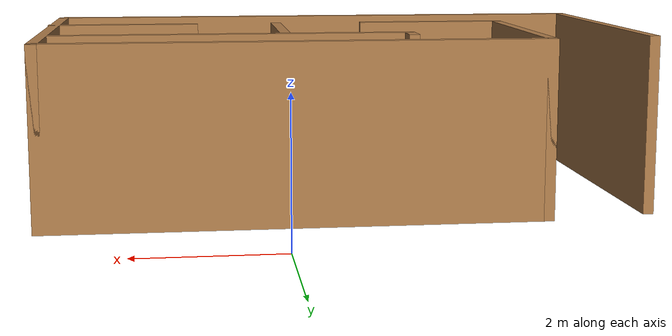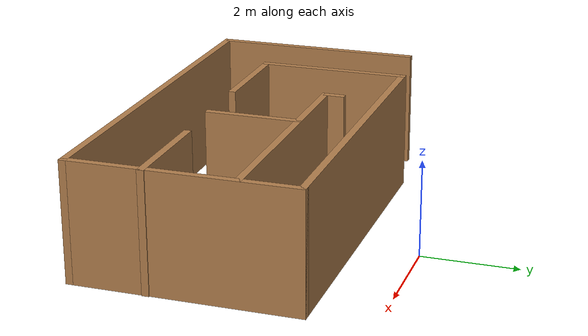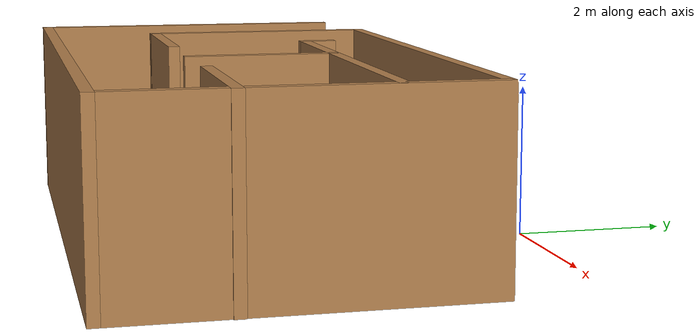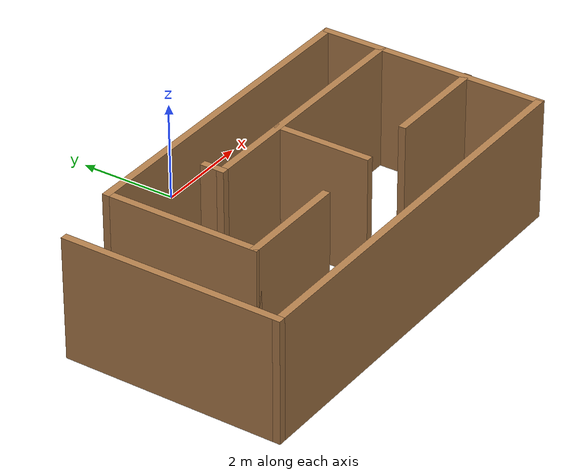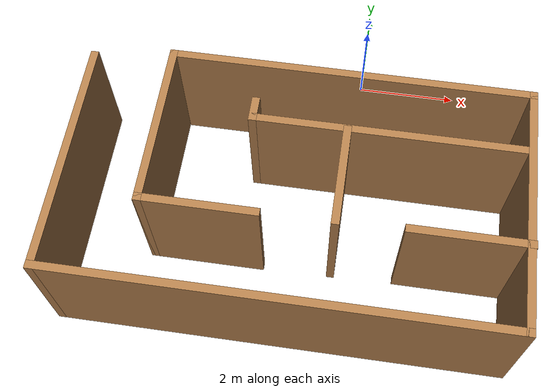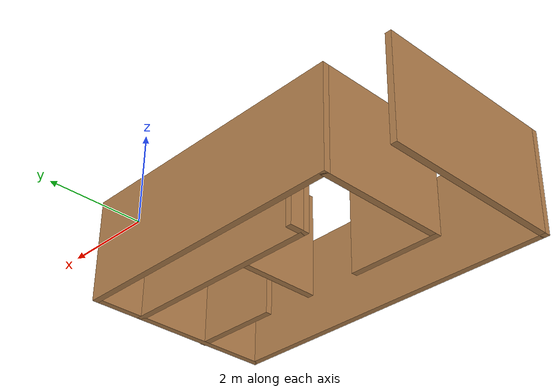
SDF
<?xml version='1.0'?>
<sdf version='1.6'>
  <model name='Untitled'>
    <pose frame=''>-0.954556 -3.65 0 0 -0 0</pose>
    <link name='Wall_0'>
      <collision name='Wall_0_Collision'>
        <geometry>
          <box>
            <size>7 0.15 2.5</size>
          </box>
        </geometry>
        <pose frame=''>0 0 1.25 0 -0 0</pose>
      </collision>
      <visual name='Wall_0_Visual'>
        <pose frame=''>0 0 1.25 0 -0 0</pose>
        <geometry>
          <box>
            <size>7 0.15 2.5</size>
          </box>
        </geometry>
        <material>
          <script>
            <uri>file://media/materials/scripts/gazebo.material</uri>
            <name>Gazebo/Wood</name>
          </script>
          <ambient>1 1 1 1</ambient>
        </material>
        <meta>
          <layer>0</layer>
        </meta>
      </visual>
      <pose frame=''>0.739556 2.3 0 0 -0 0</pose>
    </link>
    <link name='Wall_10'>
      <collision name='Wall_10_Collision'>
        <geometry>
          <box>
            <size>3.25 0.15 2.5</size>
          </box>
        </geometry>
        <pose frame=''>0 0 1.25 0 -0 0</pose>
      </collision>
      <visual name='Wall_10_Visual'>
        <pose frame=''>0 0 1.25 0 -0 0</pose>
        <geometry>
          <box>
            <size>3.25 0.15 2.5</size>
          </box>
        </geometry>
        <material>
          <script>
            <uri>file://media/materials/scripts/gazebo.material</uri>
            <name>Gazebo/Wood</name>
          </script>
          <ambient>1 1 1 1</ambient>
        </material>
        <meta>
          <layer>0</layer>
        </meta>
      </visual>
      <pose frame=''>-2.68544 0.75 0 0 -0 -1.5708</pose>
    </link>
    <link name='Wall_11'>
      <collision name='Wall_11_Collision'>
        <geometry>
          <box>
            <size>2.25 0.15 2.5</size>
          </box>
        </geometry>
        <pose frame=''>0 0 1.25 0 -0 0</pose>
      </collision>
      <visual name='Wall_11_Visual'>
        <pose frame=''>0 0 1.25 0 -0 0</pose>
        <geometry>
          <box>
            <size>2.25 0.15 2.5</size>
          </box>
        </geometry>
        <material>
          <script>
            <uri>file://media/materials/scripts/gazebo.material</uri>
            <name>Gazebo/Wood</name>
          </script>
          <ambient>1 1 1 1</ambient>
        </material>
        <meta>
          <layer>0</layer>
        </meta>
      </visual>
      <pose frame=''>-1.63544 -0.8 0 0 -0 0</pose>
    </link>
    <link name='Wall_14'>
      <collision name='Wall_14_Collision'>
        <geometry>
          <box>
            <size>2.25 0.15 2.5</size>
          </box>
        </geometry>
        <pose frame=''>0 0 1.25 0 -0 0</pose>
      </collision>
      <visual name='Wall_14_Visual'>
        <pose frame=''>0 0 1.25 0 -0 0</pose>
        <geometry>
          <box>
            <size>2.25 0.15 2.5</size>
          </box>
        </geometry>
        <material>
          <script>
            <uri>file://media/materials/scripts/gazebo.material</uri>
            <name>Gazebo/Wood</name>
          </script>
          <ambient>1 1 1 1</ambient>
        </material>
        <meta>
          <layer>0</layer>
        </meta>
      </visual>
      <pose frame=''>3.13544 -0.739111 0 0 -0 3.14159</pose>
    </link>
    <link name='Wall_16'>
      <collision name='Wall_16_Collision'>
        <geometry>
          <box>
            <size>5.25 0.15 2.5</size>
          </box>
        </geometry>
        <pose frame=''>0 0 1.25 0 -0 0</pose>
      </collision>
      <visual name='Wall_16_Visual'>
        <pose frame=''>0 0 1.25 0 -0 0</pose>
        <geometry>
          <box>
            <size>5.25 0.15 2.5</size>
          </box>
        </geometry>
        <material>
          <script>
            <uri>file://media/materials/scripts/gazebo.material</uri>
            <name>Gazebo/Wood</name>
          </script>
          <ambient>1 1 1 1</ambient>
        </material>
        <meta>
          <layer>0</layer>
        </meta>
      </visual>
      <pose frame=''>1.59544 1.10089 0 0 -0 3.14159</pose>
    </link>
    <link name='Wall_17'>
      <collision name='Wall_17_Collision'>
        <geometry>
          <box>
            <size>0.5 0.15 2.5</size>
          </box>
        </geometry>
        <pose frame=''>0 0 1.25 0 -0 0</pose>
      </collision>
      <visual name='Wall_17_Visual'>
        <pose frame=''>0 0 1.25 0 -0 0</pose>
        <geometry>
          <box>
            <size>0.5 0.15 2.5</size>
          </box>
        </geometry>
        <material>
          <script>
            <uri>file://media/materials/scripts/gazebo.material</uri>
            <name>Gazebo/Wood</name>
          </script>
          <ambient>1 1 1 1</ambient>
        </material>
        <meta>
          <layer>0</layer>
        </meta>
      </visual>
      <pose frame=''>-0.954556 1.27589 0 0 -0 1.5708</pose>
    </link>
    <link name='Wall_19'>
      <collision name='Wall_19_Collision'>
        <geometry>
          <box>
            <size>2 0.15 2.5</size>
          </box>
        </geometry>
        <pose frame=''>0 0 1.25 0 -0 0</pose>
      </collision>
      <visual name='Wall_19_Visual'>
        <pose frame=''>0 0 1.25 0 -0 0</pose>
        <geometry>
          <box>
            <size>2 0.15 2.5</size>
          </box>
        </geometry>
        <material>
          <script>
            <uri>file://media/materials/scripts/gazebo.material</uri>
            <name>Gazebo/Wood</name>
          </script>
          <ambient>1 1 1 1</ambient>
        </material>
        <meta>
          <layer>0</layer>
        </meta>
      </visual>
      <pose frame=''>0.805444 0.155889 0 0 -0 -1.5708</pose>
    </link>
    <link name='Wall_2'>
      <collision name='Wall_2_Collision'>
        <geometry>
          <box>
            <size>4.75 0.15 2.5</size>
          </box>
        </geometry>
        <pose frame=''>0 0 1.25 0 -0 0</pose>
      </collision>
      <visual name='Wall_2_Visual'>
        <pose frame=''>0 0 1.25 0 -0 0</pose>
        <geometry>
          <box>
            <size>4.75 0.15 2.5</size>
          </box>
        </geometry>
        <material>
          <script>
            <uri>file://media/materials/scripts/gazebo.material</uri>
            <name>Gazebo/Wood</name>
          </script>
          <ambient>1 1 1 1</ambient>
        </material>
        <meta>
          <layer>0</layer>
        </meta>
      </visual>
      <pose frame=''>4.16456 0 0 0 -0 -1.5708</pose>
    </link>
    <link name='Wall_3'>
      <collision name='Wall_3_Collision'>
        <geometry>
          <box>
            <size>8.5 0.15 2.5</size>
          </box>
        </geometry>
        <pose frame=''>0 0 1.25 0 -0 0</pose>
      </collision>
      <visual name='Wall_3_Visual'>
        <pose frame=''>0 0 1.25 0 -0 0</pose>
        <geometry>
          <box>
            <size>8.5 0.15 2.5</size>
          </box>
        </geometry>
        <material>
          <script>
            <uri>file://media/materials/scripts/gazebo.material</uri>
            <name>Gazebo/Wood</name>
          </script>
          <ambient>1 1 1 1</ambient>
        </material>
        <meta>
          <layer>0</layer>
        </meta>
      </visual>
      <pose frame=''>-0.010444 -2.3 0 0 -0 3.14159</pose>
    </link>
    <link name='Wall_4'>
      <collision name='Wall_4_Collision'>
        <geometry>
          <box>
            <size>4.5 0.15 2.5</size>
          </box>
        </geometry>
        <pose frame=''>0 0 1.25 0 -0 0</pose>
      </collision>
      <visual name='Wall_4_Visual'>
        <pose frame=''>0 0 1.25 0 -0 0</pose>
        <geometry>
          <box>
            <size>4.5 0.15 2.5</size>
          </box>
        </geometry>
        <material>
          <script>
            <uri>file://media/materials/scripts/gazebo.material</uri>
            <name>Gazebo/Wood</name>
          </script>
          <ambient>1 1 1 1</ambient>
        </material>
        <meta>
          <layer>0</layer>
        </meta>
      </visual>
      <pose frame=''>-4.18544 -0.125 0 0 -0 1.5708</pose>
    </link>
    <static>1</static>
  </model>
</sdf>
